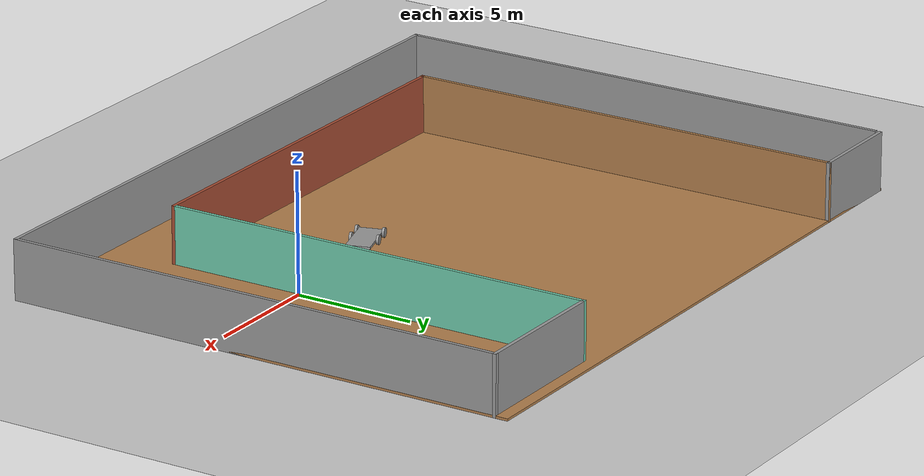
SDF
<sdf version="1.7">
 <world name="default">
  <model name="ground_plane">
   <static>1</static>
   <link name="link">
    <collision name="collision">
     <geometry><plane><normal>0 0 1</normal><size>100 100</size></plane></geometry>
     <surface>
      <contact><collide_bitmask>65535</collide_bitmask></contact>
      <friction><ode><mu>100</mu><mu2>50</mu2></ode></friction>
     </surface>
    </collision>
    <visual name="visual">
     <cast_shadows>0</cast_shadows>
     <geometry><plane><normal>0 0 1</normal><size>100 100</size></plane></geometry>
     <material>
      <script><uri>file://media/materials/scripts/gazebo.material</uri><name>Gazebo/Grey</name></script>
     </material>
    </visual>
   </link>
  </model>
  <model name="sketch">
   <pose>-1.64378 2.21885 0 0 -0 0</pose>
   <link name="Floor_0">
    <collision name="Floor_0_Collision">
     <geometry><box><size>28 22 0.1</size></box></geometry>
     <pose>0 0 0.05 0 -0 0</pose>
    </collision>
    <visual name="Floor_0_Visual">
     <pose>0 0 0.05 0 -0 0</pose>
     <geometry><box><size>28 22 0.1</size></box></geometry>
     <material>
      <script><uri>file://media/materials/scripts/gazebo.material</uri><name>Gazebo/Wood</name></script>
      <ambient>1 1 1 1</ambient>
     </material>
     <meta><layer>0</layer></meta>
    </visual>
    <pose>-6.15001 0 0 0 -0 0</pose>
   </link>
   <link name="Wall_11">
    <collision name="Wall_11_Collision">
     <geometry><box><size>21.75 0.15 2.5</size></box></geometry>
     <pose>0 0 1.25 0 -0 0</pose>
    </collision>
    <visual name="Wall_11_Visual">
     <pose>0 0 1.25 0 -0 0</pose>
     <geometry><box><size>21.75 0.15 2.5</size></box></geometry>
     <material>
      <script><uri>file://media/materials/scripts/gazebo.material</uri><name>Gazebo/Grey</name></script>
      <ambient>1 1 1 1</ambient>
     </material>
     <meta><layer>0</layer></meta>
    </visual>
    <pose>-20.075 -0.125 0 0 -0 -1.5708</pose>
   </link>
   <link name="Wall_12">
    <collision name="Wall_12_Collision">
     <geometry><box><size>28 0.15 2.5</size></box></geometry>
     <pose>0 0 1.25 0 -0 0</pose>
    </collision>
    <visual name="Wall_12_Visual">
     <pose>0 0 1.25 0 -0 0</pose>
     <geometry><box><size>28 0.15 2.5</size></box></geometry>
     <material>
      <script><uri>file://media/materials/scripts/gazebo.material</uri><name>Gazebo/Grey</name></script>
      <ambient>1 1 1 1</ambient>
     </material>
     <meta><layer>0</layer></meta>
    </visual>
    <pose>-6.15001 -10.925 0 0 -0 0</pose>
   </link>
   <link name="Wall_13">
    <collision name="Wall_13_Collision">
     <geometry><box><size>21.5 0.15 2.5</size></box></geometry>
     <pose>0 0 1.25 0 -0 0</pose>
    </collision>
    <visual name="Wall_13_Visual">
     <pose>0 0 1.25 0 -0 0</pose>
     <geometry><box><size>21.5 0.15 2.5</size></box></geometry>
     <material>
      <script><uri>file://media/materials/scripts/gazebo.material</uri><name>Gazebo/Grey</name></script>
      <ambient>1 1 1 1</ambient>
     </material>
     <meta><layer>0</layer></meta>
    </visual>
    <pose>7.77499 -0.25 0 0 -0 1.5708</pose>
   </link>
   <link name="Wall_14">
    <collision name="Wall_14_Collision">
     <geometry><box><size>6.25 0.15 2.5</size></box></geometry>
     <pose>0 0 1.25 0 -0 0</pose>
    </collision>
    <visual name="Wall_14_Visual">
     <pose>0 0 1.25 0 -0 0</pose>
     <geometry><box><size>6.25 0.15 2.5</size></box></geometry>
     <material>
      <script><uri>file://media/materials/scripts/gazebo.material</uri><name>Gazebo/Grey</name></script>
      <ambient>1 1 1 1</ambient>
     </material>
     <meta><layer>0</layer></meta>
    </visual>
    <pose>4.725 10.425 0 0 -0 3.14158</pose>
   </link>
   <link name="Wall_15">
    <collision name="Wall_15_Collision">
     <geometry><box><size>18.5 0.15 2.5</size></box></geometry>
     <pose>0 0 1.25 0 -0 0</pose>
    </collision>
    <visual name="Wall_15_Visual">
     <pose>0 0 1.25 0 -0 0</pose>
     <geometry><box><size>18.5 0.15 2.5</size></box></geometry>
     <material>
      <script><uri>file://media/materials/scripts/gazebo.material</uri><name>Gazebo/Grey</name></script>
      <ambient>0.435294 0.796078 0.67451 1</ambient>
     </material>
     <meta><layer>0</layer></meta>
    </visual>
    <pose>1.67501 1.25006 0 0 -0 -1.5708</pose>
   </link>
   <link name="Wall_16">
    <collision name="Wall_16_Collision">
     <geometry><box><size>17.75 0.15 2.5</size></box></geometry>
     <pose>0 0 1.25 0 -0 0</pose>
    </collision>
    <visual name="Wall_16_Visual">
     <pose>0 0 1.25 0 -0 0</pose>
     <geometry><box><size>17.75 0.15 2.5</size></box></geometry>
     <material>
      <script><uri>file://media/materials/scripts/gazebo.material</uri><name>Gazebo/Bricks</name></script>
      <ambient>1 1 1 1</ambient>
     </material>
     <meta><layer>0</layer></meta>
    </visual>
    <pose>-7.125 -7.92497 0 0 -0 -3.14159</pose>
   </link>
   <link name="Wall_17">
    <collision name="Wall_17_Collision">
     <geometry><box><size>19 0.15 2.5</size></box></geometry>
     <pose>0 0 1.25 0 -0 0</pose>
    </collision>
    <visual name="Wall_17_Visual">
     <pose>0 0 1.25 0 -0 0</pose>
     <geometry><box><size>19 0.15 2.5</size></box></geometry>
     <material>
      <script><uri>file://media/materials/scripts/gazebo.material</uri><name>Gazebo/Wood</name></script>
      <ambient>1 1 1 1</ambient>
     </material>
     <meta><layer>0</layer></meta>
    </visual>
    <pose>-15.925 1.5 0 0 -0 1.5708</pose>
   </link>
   <link name="Wall_18">
    <collision name="Wall_18_Collision">
     <geometry><box><size>4.25 0.15 2.5</size></box></geometry>
     <pose>0 0 1.25 0 -0 0</pose>
    </collision>
    <visual name="Wall_18_Visual">
     <pose>0 0 1.25 0 -0 0</pose>
     <geometry><box><size>4.25 0.15 2.5</size></box></geometry>
     <material>
      <script><uri>file://media/materials/scripts/gazebo.material</uri><name>Gazebo/Grey</name></script>
      <ambient>1 1 1 1</ambient>
     </material>
     <meta><layer>0</layer></meta>
    </visual>
    <pose>-17.975 10.925 0 0 -0 3.14159</pose>
   </link>
   <static>1</static>
  </model>
  <model name="robot">
   <link name="link_0">
    <inertial>
     <mass>1</mass>
     <inertia>
      <ixx>0.166667</ixx>
      <ixy>0</ixy>
      <ixz>0</ixz>
      <iyy>0.166667</iyy>
      <iyz>0</iyz>
      <izz>0.166667</izz>
     </inertia>
    </inertial>
    <visual name="visual">
     <geometry><box><size>2 1 0.1</size></box></geometry>
     <material>
      <lighting>1</lighting>
      <script><uri>file://media/materials/scripts/gazebo.material</uri><name>Gazebo/Grey</name></script>
      <shader type="pixel"><normal_map>__default__</normal_map></shader>
      <ambient>0.3 0.3 0.3 1</ambient>
      <diffuse>0.7 0.7 0.7 1</diffuse>
      <specular>0.01 0.01 0.01 1</specular>
      <emissive>0 0 0 1</emissive>
     </material>
    </visual>
    <collision name="collision">
     <geometry><box><size>2 1 0.1</size></box></geometry>
     <surface>
      <friction>
       <ode><mu>1</mu><mu2>1</mu2><fdir1>0 0 0</fdir1><slip1>0</slip1><slip2>0</slip2></ode>
       <torsional>
        <coefficient>1</coefficient>
        <patch_radius>0</patch_radius>
        <surface_radius>0</surface_radius>
        <use_patch_radius>1</use_patch_radius>
        <ode><slip>0</slip></ode>
       </torsional>
      </friction>
      <bounce><restitution_coefficient>0</restitution_coefficient><threshold>1e+06</threshold></bounce>
      <contact>
       <collide_without_contact>0</collide_without_contact>
       <collide_without_contact_bitmask>1</collide_without_contact_bitmask>
       <collide_bitmask>1</collide_bitmask>
       <ode>
        <soft_cfm>0</soft_cfm>
        <soft_erp>0.2</soft_erp>
        <kp>1e+13</kp>
        <kd>1</kd>
        <max_vel>0.01</max_vel>
        <min_depth>0</min_depth>
       </ode>
       <bullet>
        <split_impulse>1</split_impulse>
        <split_impulse_penetration_threshold>-0.01</split_impulse_penetration_threshold>
        <soft_cfm>0</soft_cfm>
        <soft_erp>0.2</soft_erp>
        <kp>1e+13</kp>
        <kd>1</kd>
       </bullet>
      </contact>
     </surface>
    </collision>
   </link>
   <link name="link_1">
    <inertial>
     <mass>1</mass>
     <inertia><ixx>0.145833</ixx><ixy>0</ixy><ixz>0</ixz><iyy>0.145833</iyy><iyz>0</iyz><izz>0.125</izz></inertia>
    </inertial>
    <pose>0 -0.550019 0 1.5707 -0 0</pose>
    <visual name="visual">
     <geometry><cylinder><radius>0.2</radius><length>0.1</length></cylinder></geometry>
     <material>
      <lighting>1</lighting>
      <script><uri>file://media/materials/scripts/gazebo.material</uri><name>Gazebo/Grey</name></script>
      <shader type="pixel"><normal_map>__default__</normal_map></shader>
      <ambient>0.3 0.3 0.3 1</ambient>
      <diffuse>0.7 0.7 0.7 1</diffuse>
      <specular>0.01 0.01 0.01 1</specular>
      <emissive>0 0 0 1</emissive>
     </material>
    </visual>
    <collision name="collision">
     <geometry><cylinder><radius>0.2</radius><length>0.1</length></cylinder></geometry>
     <surface>
      <friction>
       <ode><mu>1</mu><mu2>1</mu2><fdir1>0 0 0</fdir1><slip1>0</slip1><slip2>0</slip2></ode>
       <torsional>
        <coefficient>1</coefficient>
        <patch_radius>0</patch_radius>
        <surface_radius>0</surface_radius>
        <use_patch_radius>1</use_patch_radius>
        <ode><slip>0</slip></ode>
       </torsional>
      </friction>
      <bounce><restitution_coefficient>0</restitution_coefficient><threshold>1e+06</threshold></bounce>
      <contact>
       <collide_without_contact>0</collide_without_contact>
       <collide_without_contact_bitmask>1</collide_without_contact_bitmask>
       <collide_bitmask>1</collide_bitmask>
       <ode>
        <soft_cfm>0</soft_cfm>
        <soft_erp>0.2</soft_erp>
        <kp>1e+13</kp>
        <kd>1</kd>
        <max_vel>0.01</max_vel>
        <min_depth>0</min_depth>
       </ode>
       <bullet>
        <split_impulse>1</split_impulse>
        <split_impulse_penetration_threshold>-0.01</split_impulse_penetration_threshold>
        <soft_cfm>0</soft_cfm>
        <soft_erp>0.2</soft_erp>
        <kp>1e+13</kp>
        <kd>1</kd>
       </bullet>
      </contact>
     </surface>
    </collision>
   </link>
   <link name="link_1_clone">
    <inertial>
     <mass>1</mass>
     <inertia><ixx>0.145833</ixx><ixy>0</ixy><ixz>0</ixz><iyy>0.145833</iyy><iyz>0</iyz><izz>0.125</izz></inertia>
    </inertial>
    <pose>0 0.550019 -0 1.5707 -0 0</pose>
    <visual name="visual">
     <geometry><cylinder><radius>0.2</radius><length>0.1</length></cylinder></geometry>
     <material>
      <lighting>1</lighting>
      <script><uri>file://media/materials/scripts/gazebo.material</uri><name>Gazebo/Grey</name></script>
      <shader type="pixel"><normal_map>__default__</normal_map></shader>
      <ambient>0.3 0.3 0.3 1</ambient>
      <diffuse>0.7 0.7 0.7 1</diffuse>
      <specular>0.01 0.01 0.01 1</specular>
      <emissive>0 0 0 1</emissive>
     </material>
    </visual>
    <collision name="collision">
     <geometry><cylinder><radius>0.2</radius><length>0.1</length></cylinder></geometry>
     <surface>
      <friction>
       <ode><mu>1</mu><mu2>1</mu2><fdir1>0 0 0</fdir1><slip1>0</slip1><slip2>0</slip2></ode>
       <torsional>
        <coefficient>1</coefficient>
        <patch_radius>0</patch_radius>
        <surface_radius>0</surface_radius>
        <use_patch_radius>1</use_patch_radius>
        <ode><slip>0</slip></ode>
       </torsional>
      </friction>
      <bounce><restitution_coefficient>0</restitution_coefficient><threshold>1e+06</threshold></bounce>
      <contact>
       <collide_without_contact>0</collide_without_contact>
       <collide_without_contact_bitmask>1</collide_without_contact_bitmask>
       <collide_bitmask>1</collide_bitmask>
       <ode>
        <soft_cfm>0</soft_cfm>
        <soft_erp>0.2</soft_erp>
        <kp>1e+13</kp>
        <kd>1</kd>
        <max_vel>0.01</max_vel>
        <min_depth>0</min_depth>
       </ode>
       <bullet>
        <split_impulse>1</split_impulse>
        <split_impulse_penetration_threshold>-0.01</split_impulse_penetration_threshold>
        <soft_cfm>0</soft_cfm>
        <soft_erp>0.2</soft_erp>
        <kp>1e+13</kp>
        <kd>1</kd>
       </bullet>
      </contact>
     </surface>
    </collision>
   </link>
   <link name="link_1_clone_0">
    <inertial>
     <mass>1</mass>
     <inertia><ixx>0.145833</ixx><ixy>0</ixy><ixz>0</ixz><iyy>0.145833</iyy><iyz>0</iyz><izz>0.125</izz></inertia>
    </inertial>
    <pose>-0.8 -0.55002 -6e-06 1.57071 -0 0</pose>
    <visual name="visual">
     <geometry><cylinder><radius>0.2</radius><length>0.1</length></cylinder></geometry>
     <material>
      <lighting>1</lighting>
      <script><uri>file://media/materials/scripts/gazebo.material</uri><name>Gazebo/Grey</name></script>
      <shader type="pixel"><normal_map>__default__</normal_map></shader>
      <ambient>0.3 0.3 0.3 1</ambient>
      <diffuse>0.7 0.7 0.7 1</diffuse>
      <specular>0.01 0.01 0.01 1</specular>
      <emissive>0 0 0 1</emissive>
     </material>
    </visual>
    <collision name="collision">
     <geometry><cylinder><radius>0.2</radius><length>0.1</length></cylinder></geometry>
     <surface>
      <friction>
       <ode><mu>1</mu><mu2>1</mu2><fdir1>0 0 0</fdir1><slip1>0</slip1><slip2>0</slip2></ode>
       <torsional>
        <coefficient>1</coefficient>
        <patch_radius>0</patch_radius>
        <surface_radius>0</surface_radius>
        <use_patch_radius>1</use_patch_radius>
        <ode><slip>0</slip></ode>
       </torsional>
      </friction>
      <bounce><restitution_coefficient>0</restitution_coefficient><threshold>1e+06</threshold></bounce>
      <contact>
       <collide_without_contact>0</collide_without_contact>
       <collide_without_contact_bitmask>1</collide_without_contact_bitmask>
       <collide_bitmask>1</collide_bitmask>
       <ode>
        <soft_cfm>0</soft_cfm>
        <soft_erp>0.2</soft_erp>
        <kp>1e+13</kp>
        <kd>1</kd>
        <max_vel>0.01</max_vel>
        <min_depth>0</min_depth>
       </ode>
       <bullet>
        <split_impulse>1</split_impulse>
        <split_impulse_penetration_threshold>-0.01</split_impulse_penetration_threshold>
        <soft_cfm>0</soft_cfm>
        <soft_erp>0.2</soft_erp>
        <kp>1e+13</kp>
        <kd>1</kd>
       </bullet>
      </contact>
     </surface>
    </collision>
   </link>
   <link name="link_1_clone_1">
    <inertial>
     <mass>1</mass>
     <inertia><ixx>0.145833</ixx><ixy>0</ixy><ixz>0</ixz><iyy>0.145833</iyy><iyz>0</iyz><izz>0.125</izz></inertia>
    </inertial>
    <pose>-0.8 0.550021 6e-06 1.57071 -0 0</pose>
    <visual name="visual">
     <geometry><cylinder><radius>0.2</radius><length>0.1</length></cylinder></geometry>
     <material>
      <lighting>1</lighting>
      <script><uri>file://media/materials/scripts/gazebo.material</uri><name>Gazebo/Grey</name></script>
      <shader type="pixel"><normal_map>__default__</normal_map></shader>
      <ambient>0.3 0.3 0.3 1</ambient>
      <diffuse>0.7 0.7 0.7 1</diffuse>
      <specular>0.01 0.01 0.01 1</specular>
      <emissive>0 0 0 1</emissive>
     </material>
    </visual>
    <collision name="collision">
     <geometry><cylinder><radius>0.2</radius><length>0.1</length></cylinder></geometry>
     <surface>
      <friction>
       <ode><mu>1</mu><mu2>1</mu2><fdir1>0 0 0</fdir1><slip1>0</slip1><slip2>0</slip2></ode>
       <torsional>
        <coefficient>1</coefficient>
        <patch_radius>0</patch_radius>
        <surface_radius>0</surface_radius>
        <use_patch_radius>1</use_patch_radius>
        <ode><slip>0</slip></ode>
       </torsional>
      </friction>
      <bounce><restitution_coefficient>0</restitution_coefficient><threshold>1e+06</threshold></bounce>
      <contact>
       <collide_without_contact>0</collide_without_contact>
       <collide_without_contact_bitmask>1</collide_without_contact_bitmask>
       <collide_bitmask>1</collide_bitmask>
       <ode>
        <soft_cfm>0</soft_cfm>
        <soft_erp>0.2</soft_erp>
        <kp>1e+13</kp>
        <kd>1</kd>
        <max_vel>0.01</max_vel>
        <min_depth>0</min_depth>
       </ode>
       <bullet>
        <split_impulse>1</split_impulse>
        <split_impulse_penetration_threshold>-0.01</split_impulse_penetration_threshold>
        <soft_cfm>0</soft_cfm>
        <soft_erp>0.2</soft_erp>
        <kp>1e+13</kp>
        <kd>1</kd>
       </bullet>
      </contact>
     </surface>
    </collision>
   </link>
   <joint name="link_0_JOINT_0_0" type="revolute">
    <parent>link_0</parent>
    <child>link_1_clone_0</child>
    <axis>
     <xyz>0 0 1</xyz>
     <limit>
      <lower>-1.79769e+308</lower>
      <upper>1.79769e+308</upper>
      <effort>-1</effort>
      <velocity>-1</velocity>
     </limit>
     <dynamics>
      <spring_reference>0</spring_reference>
      <spring_stiffness>0</spring_stiffness>
      <damping>0</damping>
     </dynamics>
    </axis>
    <physics>
     <ode><limit><cfm>0</cfm><erp>0.2</erp></limit><suspension><cfm>0</cfm><erp>0.2</erp></suspension></ode>
    </physics>
   </joint>
   <joint name="link_0_JOINT_0" type="revolute">
    <parent>link_0</parent>
    <child>link_1</child>
    <axis>
     <xyz>0 0.01 1</xyz>
     <limit>
      <lower>-1.79769e+308</lower>
      <upper>1.79769e+308</upper>
      <effort>-1</effort>
      <velocity>-1</velocity>
     </limit>
     <dynamics>
      <spring_reference>0</spring_reference>
      <spring_stiffness>0</spring_stiffness>
      <damping>0</damping>
      <friction>0</friction>
     </dynamics>
    </axis>
    <physics>
     <ode><limit><cfm>0</cfm><erp>0.2</erp></limit><suspension><cfm>0</cfm><erp>0.2</erp></suspension></ode>
    </physics>
   </joint>
   <joint name="link_0_JOINT_1_0" type="revolute">
    <parent>link_0</parent>
    <child>link_1_clone_1</child>
    <axis>
     <xyz>0 0 1</xyz>
     <limit>
      <lower>-1.79769e+308</lower>
      <upper>1.79769e+308</upper>
      <effort>-1</effort>
      <velocity>-1</velocity>
     </limit>
     <dynamics>
      <spring_reference>0</spring_reference>
      <spring_stiffness>0</spring_stiffness>
      <damping>0</damping>
      <friction>0</friction>
     </dynamics>
    </axis>
    <physics>
     <ode><limit><cfm>0</cfm><erp>0.2</erp></limit><suspension><cfm>0</cfm><erp>0.2</erp></suspension></ode>
    </physics>
   </joint>
   <joint name="link_0_JOINT_1" type="revolute">
    <parent>link_0</parent>
    <child>link_1_clone</child>
    <axis>
     <xyz>1 0 0</xyz>
     <limit>
      <lower>-1.79769e+308</lower>
      <upper>1.79769e+308</upper>
      <effort>-1</effort>
      <velocity>-1</velocity>
     </limit>
     <dynamics>
      <spring_reference>0</spring_reference>
      <spring_stiffness>0</spring_stiffness>
      <damping>0</damping>
      <friction>0</friction>
     </dynamics>
    </axis>
    <physics>
     <ode><limit><cfm>0</cfm><erp>0.2</erp></limit><suspension><cfm>0</cfm><erp>0.2</erp></suspension></ode>
    </physics>
   </joint>
   <static>0</static>
   <pose>-5.72583 -0.766272 0.300004 -7e-06 4e-06 0.301074</pose>
  </model>
  <model name="my_ball">
   <link name="link_0">
    <inertial>
     <mass>1</mass>
     <inertia><ixx>0.1</ixx><ixy>0</ixy><ixz>0</ixz><iyy>0.1</iyy><iyz>0</iyz><izz>0.1</izz></inertia>
    </inertial>
    <visual name="visual">
     <geometry><sphere><radius>0.1</radius></sphere></geometry>
     <material>
      <lighting>1</lighting>
      <script><uri>file://media/materials/scripts/gazebo.material</uri><name>Gazebo/Grey</name></script>
      <shader type="pixel"><normal_map>__default__</normal_map></shader>
      <ambient>1 1 1 1</ambient>
      <diffuse>1 1 1 1</diffuse>
      <specular>1 1 1 1</specular>
      <emissive>0 0 0 1</emissive>
     </material>
    </visual>
    <collision name="collision">
     <geometry><sphere><radius>0.1</radius></sphere></geometry>
     <surface>
      <friction>
       <ode><mu>1</mu><mu2>1</mu2><fdir1>0 0 0</fdir1><slip1>0</slip1><slip2>0</slip2></ode>
       <torsional>
        <coefficient>1</coefficient>
        <patch_radius>0</patch_radius>
        <surface_radius>0</surface_radius>
        <use_patch_radius>1</use_patch_radius>
        <ode><slip>0</slip></ode>
       </torsional>
      </friction>
      <bounce><restitution_coefficient>0</restitution_coefficient><threshold>1e+06</threshold></bounce>
      <contact>
       <collide_without_contact>0</collide_without_contact>
       <collide_without_contact_bitmask>1</collide_without_contact_bitmask>
       <collide_bitmask>1</collide_bitmask>
       <ode>
        <soft_cfm>0</soft_cfm>
        <soft_erp>0.2</soft_erp>
        <kp>1e+13</kp>
        <kd>1</kd>
        <max_vel>0.01</max_vel>
        <min_depth>0</min_depth>
       </ode>
       <bullet>
        <split_impulse>1</split_impulse>
        <split_impulse_penetration_threshold>-0.01</split_impulse_penetration_threshold>
        <soft_cfm>0</soft_cfm>
        <soft_erp>0.2</soft_erp>
        <kp>1e+13</kp>
        <kd>1</kd>
       </bullet>
      </contact>
     </surface>
    </collision>
   </link>
   <static>0</static>
   <pose>-0.166546 9.08681 0.2 -1.91687 -0.937651 -1.40913</pose>
  </model>
 </world>
</sdf>
